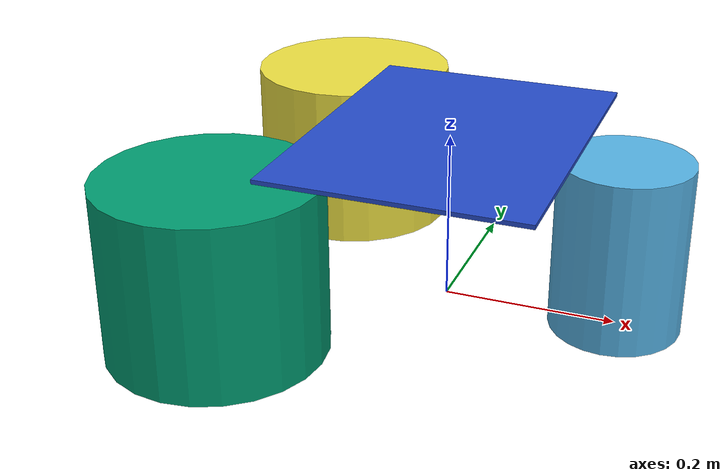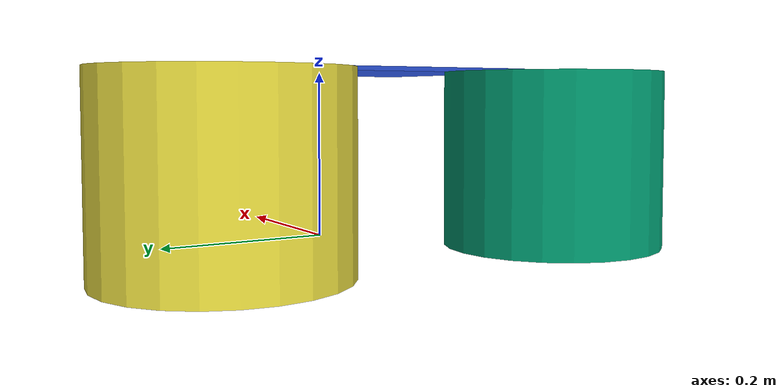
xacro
<?xml version="1.0" ?>
<robot name="calibration_object">

	<!-- Parameters -->
	<property name="cylinder_origin" value="0.2" />
	<property name="cylinder_length" value="0.2" />
	<property name="cylinder_radius" value="0.125" />

	<link name="checkerboard">
		<visual>
			<origin xyz="0 0 ${cylinder_length+0.0025}" />
			<geometry>
				<box size="0.3 0.4 0.005"/>
			</geometry>
		</visual>
		<collision>
			<origin xyz="0 0 ${cylinder_length+0.0025}" />
			<geometry>
				<box size="0.3 0.4 0.005"/>
			</geometry>
		</collision>
		<inertial>
			<origin xyz="0 0 ${cylinder_length+0.0025}" />
			<mass value="0.5" />
			<inertia ixx="1.0" ixy="0.0" ixz="0.0" iyy="1.0" iyz="0.0" izz="1.0" />
		</inertial>
	</link>
	<gazebo reference="checkerboard">
		<material>Gazebo/Red</material>
	</gazebo>

	<joint name="cylinder_1_joint" type="fixed">
		<parent link="checkerboard" />
		<child link="cylinder_1" />
		<origin xyz="0 0 0" />
	</joint>

	<link name="cylinder_1">
		<visual>
			<origin xyz="${cylinder_origin} 0 0.1" />
			<geometry>
				<cylinder length="${cylinder_length}" radius="${cylinder_radius-0.05}" />
			</geometry>
		</visual>
		<collision>
			<origin xyz="${cylinder_origin} 0 0.1" />
			<geometry>
				<cylinder length="${cylinder_length}" radius="${cylinder_radius-0.5}" />
			</geometry>
		</collision>
		<inertial>
			<origin xyz="${cylinder_origin} 0 0.1" />
			<mass value="1" />
			<inertia ixx="1.0" ixy="0.0" ixz="0.0" iyy="1.0" iyz="0.0" izz="1.0" />
		</inertial>
	</link>
	<gazebo reference="checkerboard">
		<material>Gazebo/Green</material>
	</gazebo>

	<joint name="cylinder_2_joint" type="fixed">
		<parent link="checkerboard" />
		<child link="cylinder_2" />
		<origin xyz="0 0 0" />
	</joint>

	<link name="cylinder_2">
		<visual>
			<origin xyz="${-cylinder_origin} ${-cylinder_origin} 0.1" />
			<geometry>
				<cylinder length="${cylinder_length}" radius="${cylinder_radius}" />
			</geometry>
		</visual>
		<collision>
			<origin xyz="${-cylinder_origin} ${-cylinder_origin} 0.1" />
			<geometry>
				<cylinder length="${cylinder_length}" radius="${cylinder_radius}" />
			</geometry>
		</collision>
		<inertial>
			<origin xyz="${-cylinder_origin} ${-cylinder_origin} 0.1" />
			<mass value="1" />
			<inertia ixx="1.0" ixy="0.0" ixz="0.0" iyy="1.0" iyz="0.0" izz="1.0" />
		</inertial>
	</link>
	<gazebo reference="checkerboard">
		<material>Gazebo/Blue</material>
	</gazebo>

	<joint name="cylinder_3_joint" type="fixed">
		<parent link="checkerboard" />
		<child link="cylinder_3" />
		<origin xyz="0 0 0" />
	</joint>

	<link name="cylinder_3">
		<visual>
			<origin xyz="${-cylinder_origin} ${cylinder_origin} 0.1" />
			<geometry>
				<cylinder length="${cylinder_length}" radius="${cylinder_radius}" />
			</geometry>
		</visual>
		<collision>
			<origin xyz="${-cylinder_origin} ${cylinder_origin} 0.1" />
			<geometry>
				<cylinder length="${cylinder_length}" radius="${cylinder_radius}" />
			</geometry>
		</collision>
		<inertial>
			<origin xyz="${-cylinder_origin} ${cylinder_origin} 0.1" />
			<mass value="1" />
			<inertia ixx="1.0" ixy="0.0" ixz="0.0" iyy="1.0" iyz="0.0" izz="1.0" />
		</inertial>
	</link>
	<gazebo reference="checkerboard">
		<material>Gazebo/Blue</material>
	</gazebo>

</robot>
